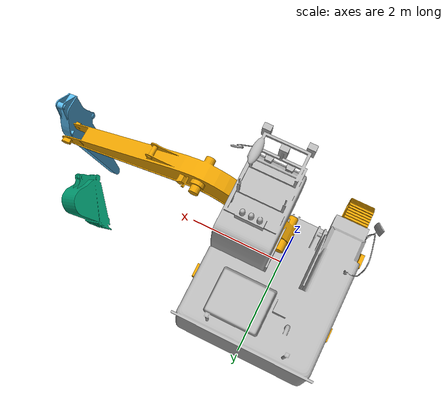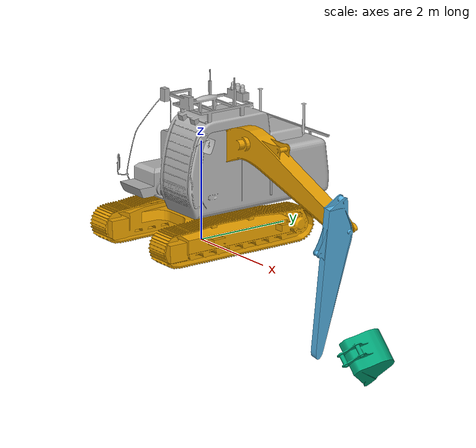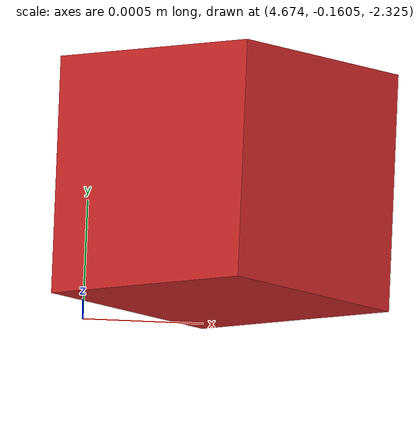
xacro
<?xml version="1.0"?>
<robot name="zx120" xmlns:xacro="http://www.ros.org/wiki/xacro">
	<xacro:property name="PI" value="3.1415926535" />
	<xacro:property name="base_mass" value="2." />
	<xacro:property name="rotator_mass" value="2" />
	<xacro:property name="boom_mass" value="1" />
	<xacro:property name="arm_mass" value="1" />
	<xacro:property name="bucket_mass" value="1" />
	<xacro:property name="is_gravity_off" value="true" />
	<!-- Import all Gazebo-customization elements, including Gazebo colors -->
	<xacro:include filename="$(find zx120_description)/urdf/zx120.gazebo" />
	<!-- Import Rviz colors -->

	<xacro:macro name="wheel_macro" params="parent prefix xyz">
		<joint name="${prefix}_joint" type="continuous">
			<origin xyz="${xyz}" rpy="${radians(-90)} 0 0" />
			<parent link="${parent}" />
			<child link="${prefix}_link" />
			<axis xyz="0 0 1" />
		</joint>
		<transmission name="${prefix}_trans" type="SimpleTransmission">
			<type>transmission_interface/SimpleTransmission</type>
			<actuator name="${prefix}_motor">
				<mechanicalReduction>1</mechanicalReduction>
			</actuator>
			<joint name="${prefix}_joint">
				<hardwareInterface>hardware_interface/VelocityJointInterface</hardwareInterface>
			</joint>
		</transmission>
		<link name="${prefix}_link">
			<inertial>
				<origin xyz="0 0 0" rpy="0 0 0" />
				<mass value="0.1" />
				<inertia ixx="0.0001" ixy="0.0" ixz="0.0" iyy="0.0001" iyz="0.0" izz="0.0001" />
			</inertial>
			<visual>
				<geometry>
					<cylinder radius="0.001" length="0.001" />
				</geometry>
				<!--material name="red"/-->
			</visual>
			<collision>
				<geometry>
					<cylinder radius="0.3" length="0.6" />
				</geometry>
			</collision>
		</link>
		<gazebo reference="${prefix}_link">
			<mu1 value="2.5" />
			<mu2 value="2.5" />
			<kp value="50000" />
			<kd value="10" />
		</gazebo>
	</xacro:macro>

	<!-- Base Link -->
	<link name="base_link">
		<visual>
			<geometry>
				<mesh filename="package://zx120_description/meshes/zx120-crawler.dae" />
			</geometry>
		</visual>

		<inertial>
			<origin xyz="-0.155869 0 0.358402" rpy="0 0 0" />
			<mass value="${base_mass}" />
			<inertia ixx="1.0" ixy="0.0" ixz="0.0" iyy="1.0" iyz="0.0" izz="1.0" />
		</inertial>
	</link>

	<!--Track(Temporary, Wheel) Definition-->
	<xacro:wheel_macro prefix="left_front_wheel" parent="base_link" xyz="1.5 1 0.3" />
	<xacro:wheel_macro prefix="left_middle_wheel" parent="base_link" xyz="0 1 0.3" />
	<xacro:wheel_macro prefix="left_rear_wheel" parent="base_link" xyz="-1.5 1 0.3" />

	<xacro:wheel_macro prefix="right_front_wheel" parent="base_link" xyz="1.5 -1 0.3" />
	<xacro:wheel_macro prefix="right_middle_wheel" parent="base_link" xyz="0 -1 0.3" />
	<xacro:wheel_macro prefix="right_rear_wheel" parent="base_link" xyz="-1.5 -1 0.3" />

	<!-- body axis -->
	<joint name="swing_joint" type="continuous">
		<origin xyz="0 0 0.643" />
		<axis xyz="0 0 2" />
		<parent link="base_link" />
		<child link="body_link" />
	</joint>

	<link name="body_link">
		<visual>
			<origin xyz="0 0 0.35" />
			<geometry>
				<mesh filename="package://zx120_description/meshes/zx120-body.dae" />
			</geometry>
		</visual>

		<collision>
			<origin xyz="0 0 0.35" />
			<geometry>
				<mesh filename="package://zx120_description/meshes/zx120-body.dae" />
			</geometry>
		</collision>

		<inertial>
			<origin xyz="-0.501522 0 1.191169" rpy="0 0 0" />
			<mass value="${rotator_mass}" />
			<inertia ixx="1.0" ixy="0.0" ixz="0.0" iyy="1.0" iyz="0.0" izz="1.0" />
		</inertial>
	</link>

	<!-- boom axis -->
	<joint name="boom_joint" type="revolute">
		<origin rpy="0 ${90/180*PI} 0" xyz="0.14 -0.16 0.781" />
		<axis xyz="0 1 0" />
		<parent link="body_link" />
		<child link="boom_link" />
		<limit lower="${radians(-70)}" upper="${radians(44)}" effort="500" velocity="6.159937255" />
	</joint>

	<link name="boom_link">
		<visual>
			<origin rpy="0 ${-PI/2+0.39} 0" xyz="0 0 0" />
			<geometry>
				<mesh filename="package://zx120_description/meshes/zx120-boom.dae" />
			</geometry>
		</visual>

		<collision>
			<origin rpy="0 ${-PI/2+0.39} 0" xyz="0 0 0" />
			<geometry>
				<mesh filename="package://zx120_description/meshes/zx120-boom.dae" />
			</geometry>
		</collision>

		<inertial>
			<origin xyz="2.091062 0.055029 0.975556" rpy="0 0 0" />
			<mass value="${boom_mass}" />
			<inertia ixx="${(boom_mass*4.6*4.6)/3}" ixy="0.0" ixz="0.0" iyy="0.0" iyz="0.0" izz="${(boom_mass*4.6*4.6)/3}" />
		</inertial>
	</link>

	<joint name="arm_joint" type="revolute">
		<origin rpy="0 0 0" xyz="0 0 4.6" />
		<axis xyz="0 1 0" />
		<parent link="boom_link" />
		<child link="arm_link" />
		<limit lower="${radians(30)}" upper="${radians(152)}" effort="500" velocity="6.159937255" />
	</joint>

	<link name="arm_link">
		<visual>
			<origin rpy="0 ${PI+0.15} 0" xyz="0 0 0" />
			<geometry>
				<mesh filename="package://zx120_description/meshes/zx120-arm.dae" />
			</geometry>
		</visual>

		<collision>
			<origin rpy="0 ${PI+0.15} 0" xyz="0 0 0" />
			<geometry>
				<mesh filename="package://zx120_description/meshes/zx120-arm.dae" />
			</geometry>
		</collision>

		<inertial>
			<origin xyz="0.305996 0.000026 -0.912806" rpy="0 0 0" />
			<mass value="${arm_mass}" />
			<inertia ixx="${(arm_mass*4.6*4.6)/3}" ixy="0.0" ixz="0.0" iyy="0.0" iyz="0.0" izz="${(arm_mass*4.6*4.6)/3}" />
		</inertial>
	</link>

	<!-- bucket axis -->
	<joint name="bucket_joint" type="revolute">
		<origin rpy="0 0 0" xyz="0 0 2.519" />
		<axis xyz="0 1 0" />
		<parent link="arm_link" />
		<child link="bucket_link" />
		<limit lower="${radians(-33)}" upper="${radians(143)}" effort="500" velocity="6.159937255" />
	</joint>

	<link name="bucket_link">
		<visual>
			<origin rpy="0 ${PI/4} 0" xyz="0 0 0" />
			<geometry>
				<mesh filename="package://zx120_description/meshes/zx120-bucket.dae" />
			</geometry>
		</visual>

		<collision>
			<origin rpy="0 ${PI/4} 0" xyz="0 0 0" />
			<geometry>
				<mesh filename="package://zx120_description/meshes/zx120-bucket.dae" />
			</geometry>
		</collision>

		<inertial>
			<origin xyz="-0.442405 0.001740 0.247894" rpy="0 0 0" />
			<mass value="${bucket_mass}" />
			<inertia ixx="${(bucket_mass*4.6*4.6)/3}" ixy="0.0" ixz="0.0" iyy="0.0" iyz="0.0" izz="${(bucket_mass*4.6*4.6)/3}" />
		</inertial>
	</link>

	<link name="bucket_end_link">
		<visual>
			<origin xyz="0 0 0" rpy="0 0 0" />
			<geometry>
				<box size="0.001 0.001 0.001" />
			</geometry>
			<material name="red" />
		</visual>
		<inertial>
			<origin xyz="0 0 0" />
			<mass value="1.0e-03" />
			<inertia ixx="1.0e-03" ixy="0.0" ixz="0.0" iyy="1.0e-03" iyz="0.0" izz="1.0e-03" />
		</inertial>
	</link>

	<joint name="bucket_end_joint" type="revolute">
		<parent link="bucket_link" />
		<child link="bucket_end_link" />
		<axis xyz="1 0 0" />
		<origin rpy="0 ${radians(50)} 0" xyz="0 0 1.23" />
		<limit effort="1" lower="-3.14" upper="3.14" velocity="0.5" />
	</joint>

	<transmission name="tran1">
		<type>transmission_interface/SimpleTransmission</type>
		<joint name="swing_joint">
			<hardwareInterface>hardware_interface/EffortJointInterface</hardwareInterface>
		</joint>
		<actuator name="motor1">
			<hardwareInterface>hardware_interface/EffortJointInterface</hardwareInterface>
			<mechanicalReduction>1</mechanicalReduction>
		</actuator>
	</transmission>

	<transmission name="tran2">
		<type>transmission_interface/SimpleTransmission</type>
		<joint name="boom_joint">
			<hardwareInterface>hardware_interface/EffortJointInterface</hardwareInterface>
		</joint>
		<actuator name="motor2">
			<hardwareInterface>hardware_interface/EffortJointInterface</hardwareInterface>
			<mechanicalReduction>1</mechanicalReduction>
		</actuator>
	</transmission>

	<transmission name="tran3">
		<type>transmission_interface/SimpleTransmission</type>
		<joint name="arm_joint">
			<hardwareInterface>hardware_interface/EffortJointInterface</hardwareInterface>
		</joint>
		<actuator name="motor3">
			<hardwareInterface>hardware_interface/EffortJointInterface</hardwareInterface>
			<mechanicalReduction>1</mechanicalReduction>
		</actuator>
	</transmission>

	<transmission name="tran4">
		<type>transmission_interface/SimpleTransmission</type>
		<joint name="bucket_joint">
			<hardwareInterface>hardware_interface/EffortJointInterface</hardwareInterface>
		</joint>
		<actuator name="motor4">
			<hardwareInterface>hardware_interface/EffortJointInterface</hardwareInterface>
			<mechanicalReduction>1</mechanicalReduction>
		</actuator>
	</transmission>

	<transmission name="dummy_trans1">
		<type>transmission_interface/SimpleTransmission</type>
		<joint name="bucket_end_joint">
			<hardwareInterface>hardware_interface/PositionJointInterface</hardwareInterface>
		</joint>
		<actuator name="dummy_motor1">
			<hardwareInterface>hardware_interface/PositionJointInterface</hardwareInterface>
			<mechanicalReduction>1</mechanicalReduction>
		</actuator>
	</transmission>

</robot>
